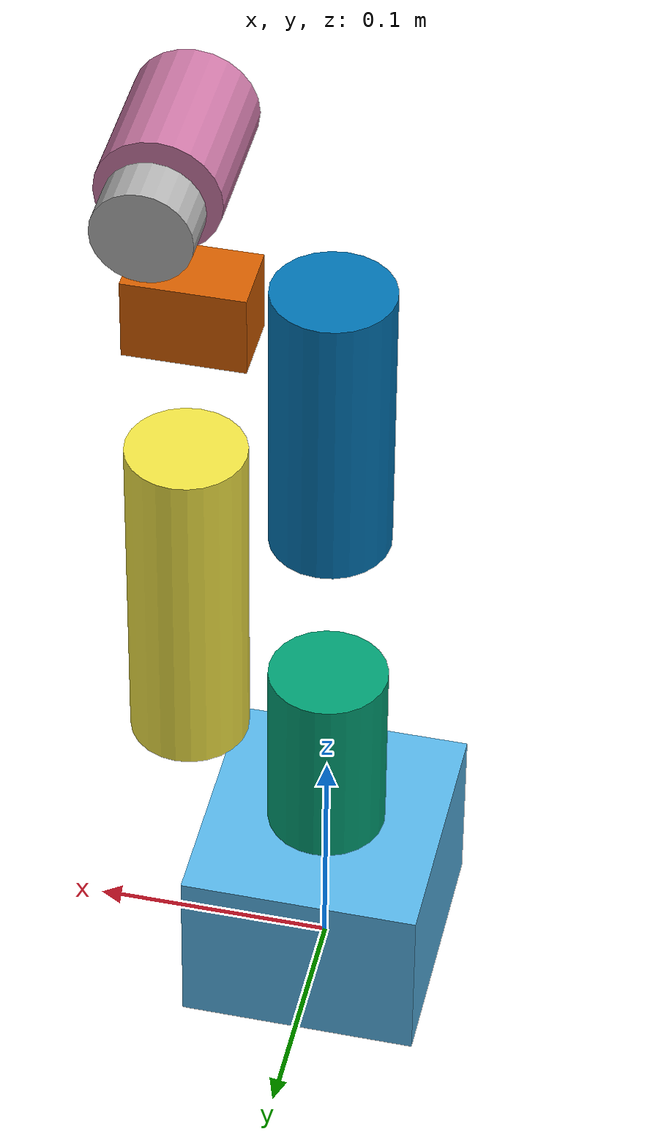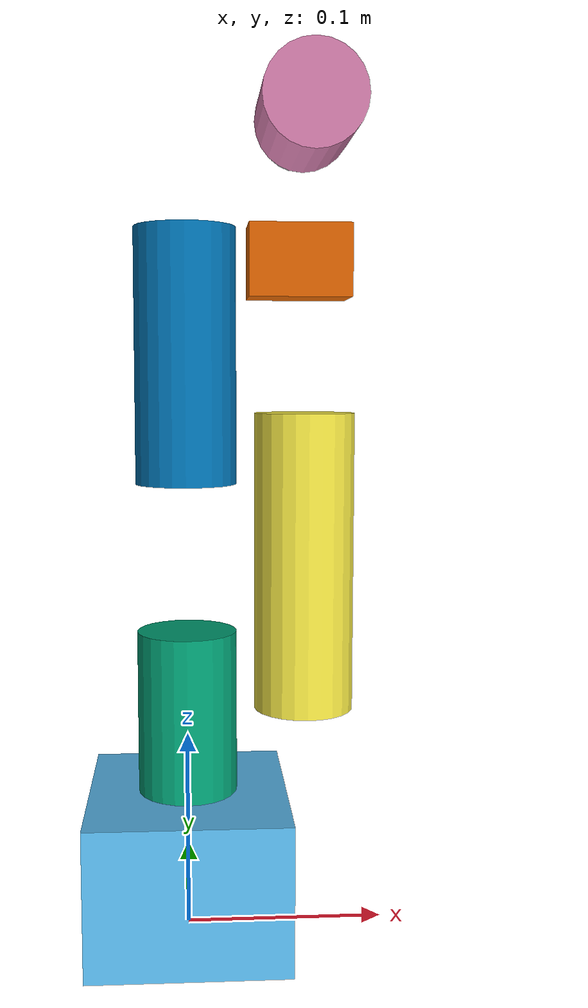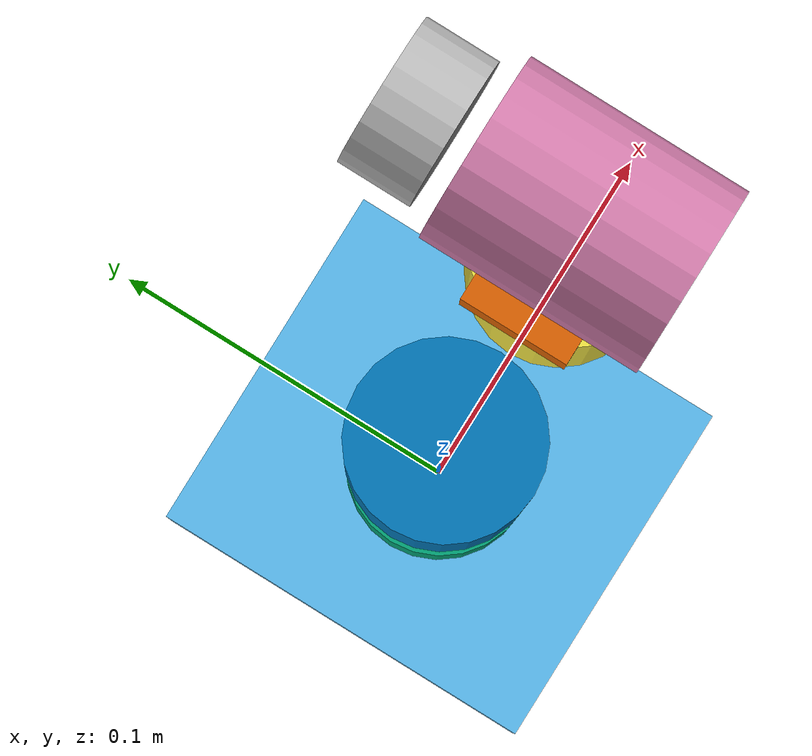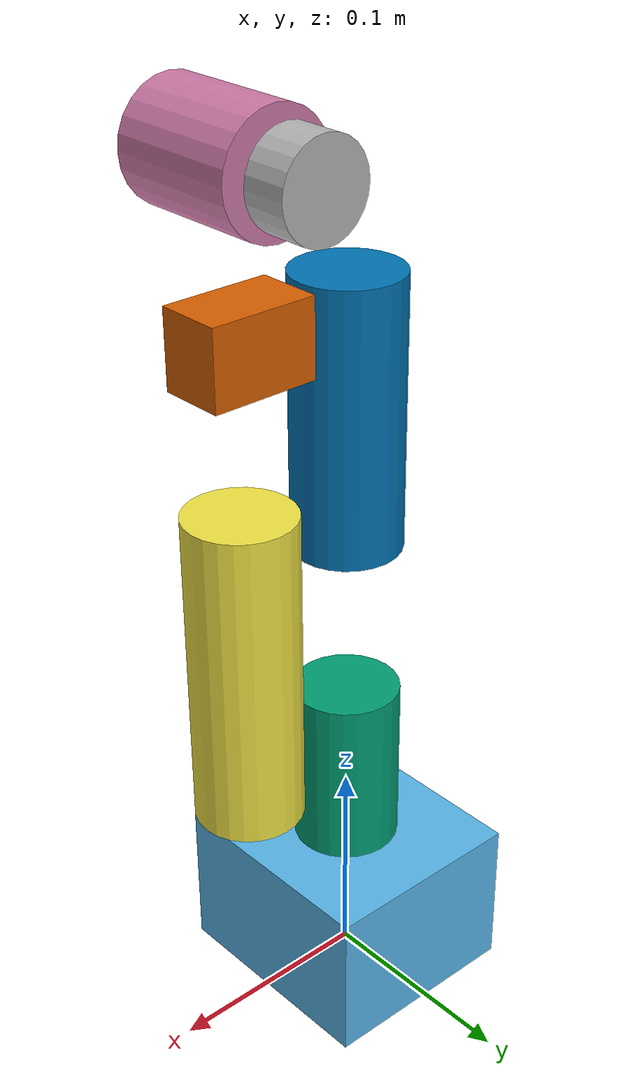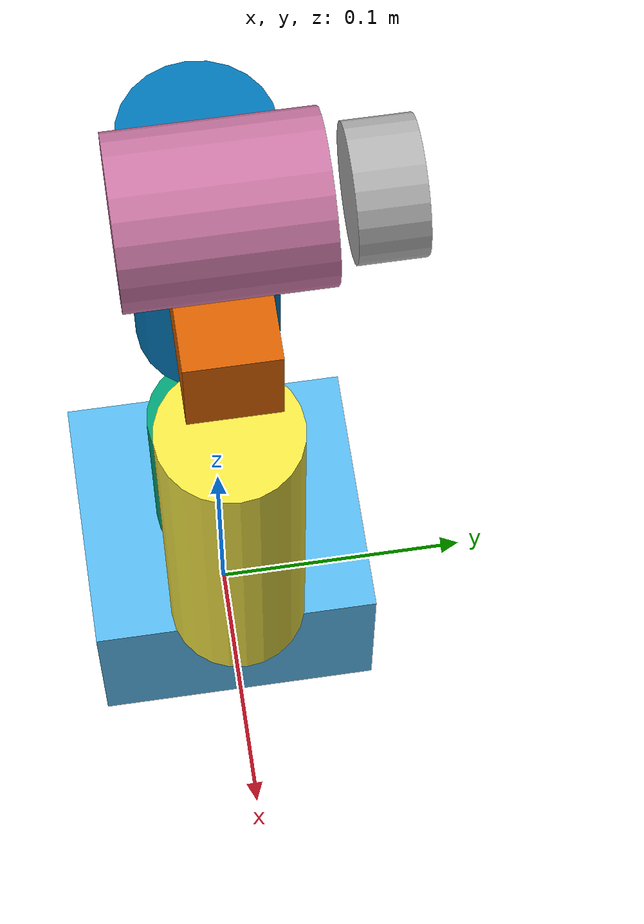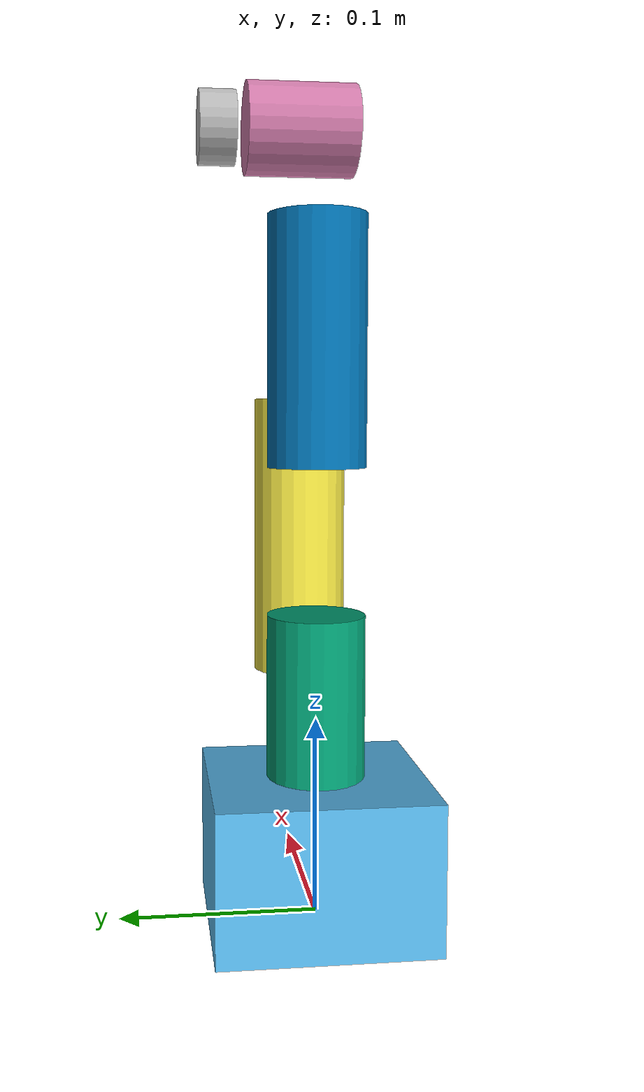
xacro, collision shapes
<?xml version="1.0"?>
<robot name="mycobot_280pi" xmlns:xacro="http://www.ros.org/wiki/xacro">
  <xacro:include filename="$(find robot_description)/urdf/mycobot_280pi/mycobot_280pi_arm.urdf.xacro"/>

  <link name="base_link" />
  <xacro:mycobot_280pi_arm base_link="base_link" flange_link="link6_flange" prefix="">
    <origin xyz="0 0 0" rpy="0 0 0"/>
  </xacro:mycobot_280pi_arm>
</robot>

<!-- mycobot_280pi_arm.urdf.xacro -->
<robot xmlns:xacro="http://www.ros.org/wiki/xacro">

  <xacro:property name="joint_effort" value="56.0"/>
  <xacro:property name="joint_velocity" value="2.792527"/>
  <xacro:property name="joint_damping" value="0.0"/>
  <xacro:property name="joint_friction" value="0.0"/>

  <xacro:property name="link1_mass" value="0.12"/>
  <xacro:property name="link2_mass" value="0.19"/>
  <xacro:property name="link3_mass" value="0.16"/>
  <xacro:property name="link4_mass" value="0.124"/>
  <xacro:property name="link5_mass" value="0.11"/>
  <xacro:property name="link6_mass" value="0.0739"/>
  <xacro:property name="flange_mass" value="0.035"/>

  <xacro:macro name="link_inertial" params="mass ixx iyy izz">
    <inertial>
      <origin xyz="0 0 0.0" rpy="0 0 0"/>
      <mass value="${mass}"/>
      <inertia
        ixx="${ixx}" ixy="0.0" ixz="0.0"
        iyy="${iyy}" iyz="0.0"
        izz="${izz}"/>
    </inertial>
  </xacro:macro>

  <xacro:macro name="material_visual" params="ref_link ambient diffuse specular">
    <gazebo reference="${ref_link}">
      <visual>
        <material>
          <ambient>${ambient}</ambient>
          <diffuse>${diffuse}</diffuse>
          <specular>${specular}</specular>
        </material>
      </visual>
    </gazebo>
  </xacro:macro>

  <xacro:macro name="mycobot_280pi_arm" params="base_link flange_link prefix *origin">

    <link name="${prefix}link1">
      <xacro:link_inertial mass="${link1_mass}" ixx="0.000148" iyy="0.000148" izz="0.000096"/>
      <visual>
        <geometry>
          <mesh filename="file://$(find robot_description)/meshes/mycobot_280_pi/link1.dae"/>
        </geometry>
        <origin xyz="0.0 0 0" rpy="0 0 ${-pi/2}"/>
      </visual>
      <collision>
        <geometry>
          <box size="0.1 0.11 0.075"/>
        </geometry>
        <origin xyz="0.0 0.0 0.034" rpy="0 0 0"/>
      </collision>
    </link>

    <link name="${prefix}link2">
      <xacro:link_inertial mass="${link2_mass}" ixx="0.000148" iyy="0.000148" izz="0.000096"/>
      <visual>
        <geometry>
          <mesh filename="file://$(find robot_description)/meshes/mycobot_280_pi/link2.dae"/>
        </geometry>
        <origin xyz="0.0 0 -0.06096" rpy="0 0 ${-pi/2}"/>
      </visual>
      <collision>
        <geometry>
          <cylinder radius="0.025" length="0.085"/>
        </geometry>
        <origin xyz="0.0 0 -0.02" rpy="0 0 ${-pi/2}"/>
      </collision>
    </link>

    <link name="${prefix}link3">
      <xacro:link_inertial mass="${link3_mass}" ixx="0.000148" iyy="0.000148" izz="0.000096"/>
      <visual>
        <geometry>
          <mesh filename="file://$(find robot_description)/meshes/mycobot_280_pi/link3.dae"/>
        </geometry>
        <origin xyz="0.0 0 0.03256" rpy="0 ${-pi/2} 0"/>
      </visual>
      <collision>
        <geometry>
          <cylinder radius="0.025" length="0.15"/>
        </geometry>
        <origin xyz="-0.058 0 0.059" rpy="0 ${-pi/2} 0"/>
      </collision>
    </link>

    <link name="${prefix}link4">
      <xacro:link_inertial mass="${link4_mass}" ixx="0.000103" iyy="0.000103" izz="0.000096"/>
      <visual>
        <geometry>
          <mesh filename="file://$(find robot_description)/meshes/mycobot_280_pi/link4.dae"/>
        </geometry>
        <origin xyz="0.0 0 0.03056" rpy="0 ${-pi/2} 0"/>
      </visual>
      <collision>
        <geometry>
          <cylinder radius="0.025" length="0.125"/>
        </geometry>
        <origin xyz="-0.05 0 0.0" rpy="0 ${-pi/2} 0"/>
      </collision>
    </link>

    <link name="${prefix}link5">
      <xacro:link_inertial mass="${link5_mass}" ixx="0.000103" iyy="0.000103" izz="0.000096"/>
      <visual>
        <geometry>
          <mesh filename="file://$(find robot_description)/meshes/mycobot_280_pi/link5.dae"/>
        </geometry>
        <origin xyz="0.0 0 -0.03356" rpy="${-pi/2} 0 0"/>
      </visual>
      <collision>
        <geometry>
          <box size="0.03 0.035 0.05"/>
        </geometry>
        <origin xyz="0.0 0 -0.005" rpy="0 0.0 0"/>
      </collision>
    </link>

    <link name="${prefix}link6">
      <xacro:link_inertial mass="${link6_mass}" ixx="0.00006649" iyy="0.00006649" izz="0.000096"/>
      <visual>
        <geometry>
          <mesh filename="file://$(find robot_description)/meshes/mycobot_280_pi/link6.dae"/>
        </geometry>
        <origin xyz="0 0.00 -0.038" rpy="0 0 0"/>
      </visual>
      <collision>
        <geometry>
          <cylinder radius="0.025" length="0.06"/>
        </geometry>
        <origin xyz="0 0.00 0.0" rpy="${-pi/2} 0 0"/>
      </collision>
    </link>

    <link name="${prefix}${flange_link}">
      <xacro:link_inertial mass="${flange_mass}" ixx="0.0000149" iyy="0.0000149" izz="0.0000196"/>
      <visual>
        <geometry>
          <mesh filename="file://$(find robot_description)/meshes/mycobot_280_pi/link7.dae"/>
        </geometry>
        <origin xyz="0.0 0 -0.012" rpy="0 0 0"/>
      </visual>
      <collision>
        <geometry>
          <cylinder radius="0.02" length="0.02"/>
        </geometry>
        <origin xyz="0 0.00 0.0" rpy="0 0 0"/>
      </collision>
    </link>

    <xacro:if value="${base_link != ''}">
      <joint name="${prefix}${base_link}_to_${prefix}link1" type="fixed">
        <parent link="${prefix}${base_link}"/>
        <child link="${prefix}link1"/>
        <xacro:insert_block name="origin"/>
      </joint>
    </xacro:if>

    <joint name="${prefix}link1_to_${prefix}link2" type="revolute">
      <axis xyz="0 0 1"/>
      <limit effort="${joint_effort}" lower="-2.879793" upper="2.879793" velocity="${joint_velocity}"/>
      <parent link="${prefix}link1"/>
      <child link="${prefix}link2"/>
      <origin xyz="0 0 0.13156" rpy="0 0 ${pi/2}"/>
      <dynamics damping="${joint_damping}" friction="${joint_friction}"/>
    </joint>

    <joint name="${prefix}link2_to_${prefix}link3" type="revolute">
      <axis xyz="0 0 1"/>
      <limit effort="${joint_effort}" lower="-2.879793" upper="2.879793" velocity="${joint_velocity}"/>
      <parent link="${prefix}link2"/>
      <child link="${prefix}link3"/>
      <origin xyz="0 0 -0.001" rpy="0 ${pi/2} ${-pi/2}"/>
      <dynamics damping="${joint_damping}" friction="${joint_friction}"/>
    </joint>

    <joint name="${prefix}link3_to_${prefix}link4" type="revolute">
      <axis xyz="0 0 1"/>
      <limit effort="${joint_effort}" lower="-2.879793" upper="2.879793" velocity="${joint_velocity}"/>
      <parent link="${prefix}link3"/>
      <child link="${prefix}link4"/>
      <origin xyz="-0.1104 0 0" rpy="0 0 0"/>
      <dynamics damping="${joint_damping}" friction="${joint_friction}"/>
    </joint>

    <joint name="${prefix}link4_to_${prefix}link5" type="revolute">
      <axis xyz="0 0 1"/>
      <limit effort="${joint_effort}" lower="-2.879793" upper="2.879793" velocity="${joint_velocity}"/>
      <parent link="${prefix}link4"/>
      <child link="${prefix}link5"/>
      <origin xyz="-0.096 0 0.06062" rpy="0 0 ${-pi/2}"/>
      <dynamics damping="${joint_damping}" friction="${joint_friction}"/>
    </joint>

    <joint name="${prefix}link5_to_${prefix}link6" type="revolute">
      <axis xyz="0 0 1"/>
      <limit effort="${joint_effort}" lower="-2.879793" upper="2.879793" velocity="${joint_velocity}"/>
      <parent link="${prefix}link5"/>
      <child link="${prefix}link6"/>
      <origin xyz="0 -0.07318 0" rpy="${pi/2} ${-pi/2} 0"/>
      <dynamics damping="${joint_damping}" friction="${joint_friction}"/>
    </joint>

    <joint name="${prefix}link6_to_${prefix}${flange_link}" type="revolute">
      <axis xyz="0 0 1"/>
      <limit effort="${joint_effort}" lower="-3.05" upper="3.05" velocity="${joint_velocity}"/>
      <parent link="${prefix}link6"/>
      <child link="${prefix}${flange_link}"/>
      <origin xyz="0 0.0456 0" rpy="${-pi/2} 0 0"/>
      <dynamics damping="${joint_damping}" friction="${joint_friction}"/>
    </joint>

    <xacro:material_visual ref_link="${prefix}link1" ambient="0.5 0.5 0.5 1" diffuse="0.5 0.5 0.5 1" specular="0.5 0.5 0.5 1"/>
    <xacro:material_visual ref_link="${prefix}link2" ambient="1 1 1 1" diffuse="1 1 1 1" specular="1 1 1 1"/>
    <xacro:material_visual ref_link="${prefix}link3" ambient="1 1 1 1" diffuse="1 1 1 1" specular="1 1 1 1"/>
    <xacro:material_visual ref_link="${prefix}link4" ambient="1 1 1 1" diffuse="1 1 1 1" specular="1 1 1 1"/>
    <xacro:material_visual ref_link="${prefix}link5" ambient="1 1 1 1" diffuse="1 1 1 1" specular="1 1 1 1"/>
    <xacro:material_visual ref_link="${prefix}link6" ambient="1 1 1 1" diffuse="1 1 1 1" specular="1 1 1 1"/>
    <xacro:material_visual ref_link="${prefix}${flange_link}" ambient="0.5 0.5 0.5 1" diffuse="0.5 0.5 0.5 1" specular="0.5 0.5 0.5 1"/>

  </xacro:macro>
</robot>
